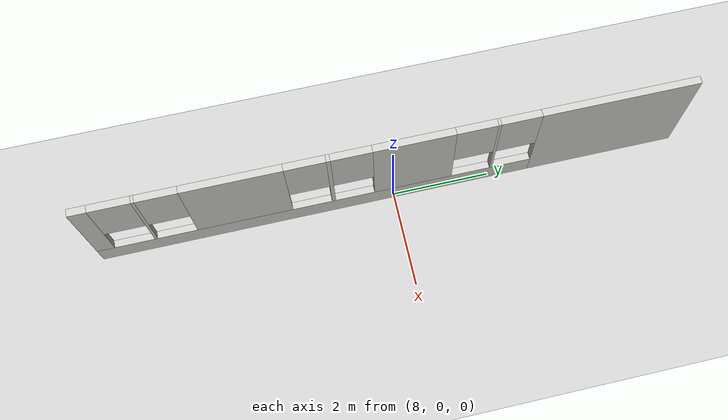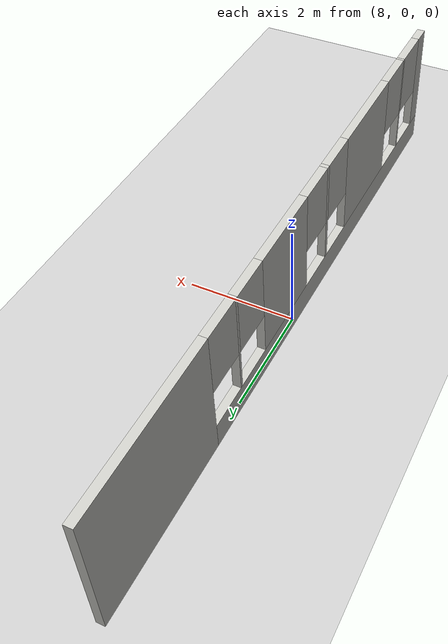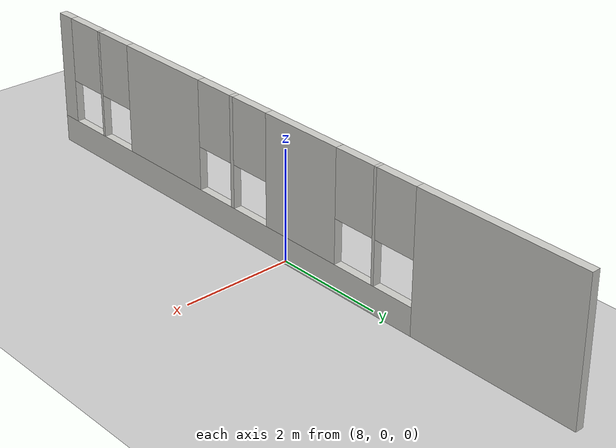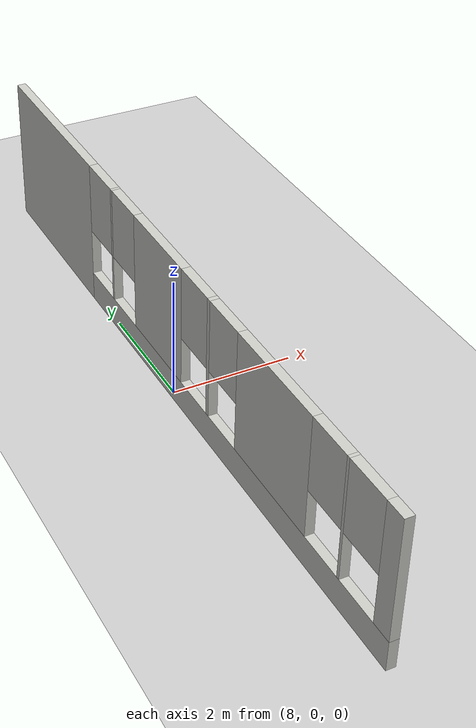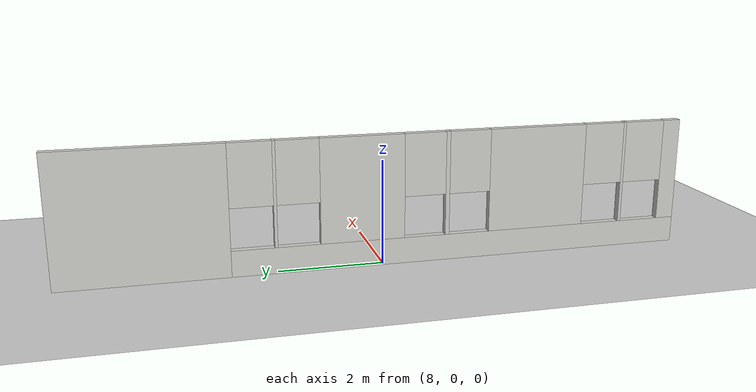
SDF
<sdf version="1.6">
 <world name="default">
  <model name="ground_plane">
   <static>1</static>
   <link name="link">
    <collision name="collision">
     <geometry><plane><normal>0 0 1</normal><size>100 100</size></plane></geometry>
     <surface><friction><ode><mu>100</mu><mu2>50</mu2></ode></friction></surface>
    </collision>
    <visual name="visual">
     <cast_shadows>0</cast_shadows>
     <geometry><plane><normal>0 0 1</normal><size>100 100</size></plane></geometry>
     <material>
      <script><uri>file://media/materials/scripts/gazebo.material</uri><name>Gazebo/Grey</name></script>
     </material>
    </visual>
   </link>
  </model>
  <model name="wall_short_window_tiles">
   <pose>7.99601 -0.02569 0 0 -0 0</pose>
   <link name="Wall_0">
    <pose>0 -0 0 0 -0 -1.5708</pose>
    <visual name="Wall_0_Visual_0">
     <pose>-4.43927 0 1.25 0 -0 0</pose>
     <geometry><box><size>3.12146 0.15 2.5</size></box></geometry>
     <material>
      <script><uri>file://media/materials/scripts/gazebo.material</uri><name>Gazebo/CeilingTiled</name></script>
      <ambient>1 1 1 1</ambient>
     </material>
     <meta><layer>0</layer></meta>
    </visual>
    <collision name="Wall_0_Collision_0">
     <geometry><box><size>3.12146 0.15 2.5</size></box></geometry>
     <pose>-4.43927 0 1.25 0 -0 0</pose>
    </collision>
    <visual name="Wall_0_Visual_1">
     <pose>1.56073 0 0.25 0 -0 0</pose>
     <geometry><box><size>8.87854 0.15 0.5</size></box></geometry>
     <material>
      <script><uri>file://media/materials/scripts/gazebo.material</uri><name>Gazebo/CeilingTiled</name></script>
      <ambient>1 1 1 1</ambient>
     </material>
     <meta><layer>0</layer></meta>
    </visual>
    <collision name="Wall_0_Collision_1">
     <geometry><box><size>8.87854 0.15 0.5</size></box></geometry>
     <pose>1.56073 0 0.25 0 -0 0</pose>
    </collision>
    <visual name="Wall_0_Visual_2">
     <pose>-2.05062 0 1.5 0 -0 0</pose>
     <geometry><box><size>0.055833 0.15 2</size></box></geometry>
     <material>
      <script><uri>file://media/materials/scripts/gazebo.material</uri><name>Gazebo/CeilingTiled</name></script>
      <ambient>1 1 1 1</ambient>
     </material>
     <meta><layer>0</layer></meta>
    </visual>
    <collision name="Wall_0_Collision_2">
     <geometry><box><size>0.055833 0.15 2</size></box></geometry>
     <pose>-2.05062 0 1.5 0 -0 0</pose>
    </collision>
    <visual name="Wall_0_Visual_3">
     <pose>-0.423181 0 1.5 0 -0 0</pose>
     <geometry><box><size>1.59905 0.15 2</size></box></geometry>
     <material>
      <script><uri>file://media/materials/scripts/gazebo.material</uri><name>Gazebo/CeilingTiled</name></script>
      <ambient>1 1 1 1</ambient>
     </material>
     <meta><layer>0</layer></meta>
    </visual>
    <collision name="Wall_0_Collision_3">
     <geometry><box><size>1.59905 0.15 2</size></box></geometry>
     <pose>-0.423181 0 1.5 0 -0 0</pose>
    </collision>
    <visual name="Wall_0_Visual_4">
     <pose>1.21525 0 1.5 0 -0 0</pose>
     <geometry><box><size>0.077807 0.15 2</size></box></geometry>
     <material>
      <script><uri>file://media/materials/scripts/gazebo.material</uri><name>Gazebo/CeilingTiled</name></script>
      <ambient>1 1 1 1</ambient>
     </material>
     <meta><layer>0</layer></meta>
    </visual>
    <collision name="Wall_0_Collision_4">
     <geometry><box><size>0.077807 0.15 2</size></box></geometry>
     <pose>1.21525 0 1.5 0 -0 0</pose>
    </collision>
    <visual name="Wall_0_Visual_5">
     <pose>3.0227 0 1.5 0 -0 0</pose>
     <geometry><box><size>1.9371 0.15 2</size></box></geometry>
     <material>
      <script><uri>file://media/materials/scripts/gazebo.material</uri><name>Gazebo/CeilingTiled</name></script>
      <ambient>1 1 1 1</ambient>
     </material>
     <meta><layer>0</layer></meta>
    </visual>
    <collision name="Wall_0_Collision_5">
     <geometry><box><size>1.9371 0.15 2</size></box></geometry>
     <pose>3.0227 0 1.5 0 -0 0</pose>
    </collision>
    <visual name="Wall_0_Visual_6">
     <pose>4.81917 0 1.5 0 -0 0</pose>
     <geometry><box><size>0.055833 0.15 2</size></box></geometry>
     <material>
      <script><uri>file://media/materials/scripts/gazebo.material</uri><name>Gazebo/CeilingTiled</name></script>
      <ambient>1 1 1 1</ambient>
     </material>
     <meta><layer>0</layer></meta>
    </visual>
    <collision name="Wall_0_Collision_6">
     <geometry><box><size>0.055833 0.15 2</size></box></geometry>
     <pose>4.81917 0 1.5 0 -0 0</pose>
    </collision>
    <visual name="Wall_0_Visual_7">
     <pose>5.82354 0 1.5 0 -0 0</pose>
     <geometry><box><size>0.352917 0.15 2</size></box></geometry>
     <material>
      <script><uri>file://media/materials/scripts/gazebo.material</uri><name>Gazebo/CeilingTiled</name></script>
      <ambient>1 1 1 1</ambient>
     </material>
     <meta><layer>0</layer></meta>
    </visual>
    <collision name="Wall_0_Collision_7">
     <geometry><box><size>0.352917 0.15 2</size></box></geometry>
     <pose>5.82354 0 1.5 0 -0 0</pose>
    </collision>
    <visual name="Wall_0_Visual_8">
     <pose>-2.47854 0 1.9 0 -0 0</pose>
     <geometry><box><size>0.8 0.15 1.2</size></box></geometry>
     <material>
      <script><uri>file://media/materials/scripts/gazebo.material</uri><name>Gazebo/CeilingTiled</name></script>
      <ambient>1 1 1 1</ambient>
     </material>
     <meta><layer>0</layer></meta>
    </visual>
    <collision name="Wall_0_Collision_8">
     <geometry><box><size>0.8 0.15 1.2</size></box></geometry>
     <pose>-2.47854 0 1.9 0 -0 0</pose>
    </collision>
    <visual name="Wall_0_Visual_9">
     <pose>-1.62271 0 1.9 0 -0 0</pose>
     <geometry><box><size>0.8 0.15 1.2</size></box></geometry>
     <material>
      <script><uri>file://media/materials/scripts/gazebo.material</uri><name>Gazebo/CeilingTiled</name></script>
      <ambient>1 1 1 1</ambient>
     </material>
     <meta><layer>0</layer></meta>
    </visual>
    <collision name="Wall_0_Collision_9">
     <geometry><box><size>0.8 0.15 1.2</size></box></geometry>
     <pose>-1.62271 0 1.9 0 -0 0</pose>
    </collision>
    <visual name="Wall_0_Visual_10">
     <pose>0.776344 0 1.9 0 -0 0</pose>
     <geometry><box><size>0.8 0.15 1.2</size></box></geometry>
     <material>
      <script><uri>file://media/materials/scripts/gazebo.material</uri><name>Gazebo/CeilingTiled</name></script>
      <ambient>1 1 1 1</ambient>
     </material>
     <meta><layer>0</layer></meta>
    </visual>
    <collision name="Wall_0_Collision_10">
     <geometry><box><size>0.8 0.15 1.2</size></box></geometry>
     <pose>0.776344 0 1.9 0 -0 0</pose>
    </collision>
    <visual name="Wall_0_Visual_11">
     <pose>1.65415 0 1.9 0 -0 0</pose>
     <geometry><box><size>0.8 0.15 1.2</size></box></geometry>
     <material>
      <script><uri>file://media/materials/scripts/gazebo.material</uri><name>Gazebo/CeilingTiled</name></script>
      <ambient>1 1 1 1</ambient>
     </material>
     <meta><layer>0</layer></meta>
    </visual>
    <collision name="Wall_0_Collision_11">
     <geometry><box><size>0.8 0.15 1.2</size></box></geometry>
     <pose>1.65415 0 1.9 0 -0 0</pose>
    </collision>
    <visual name="Wall_0_Visual_12">
     <pose>4.39125 0 1.9 0 -0 0</pose>
     <geometry><box><size>0.8 0.15 1.2</size></box></geometry>
     <material>
      <script><uri>file://media/materials/scripts/gazebo.material</uri><name>Gazebo/CeilingTiled</name></script>
      <ambient>1 1 1 1</ambient>
     </material>
     <meta><layer>0</layer></meta>
    </visual>
    <collision name="Wall_0_Collision_12">
     <geometry><box><size>0.8 0.15 1.2</size></box></geometry>
     <pose>4.39125 0 1.9 0 -0 0</pose>
    </collision>
    <visual name="Wall_0_Visual_13">
     <pose>5.24708 0 1.9 0 -0 0</pose>
     <geometry><box><size>0.8 0.15 1.2</size></box></geometry>
     <material>
      <script><uri>file://media/materials/scripts/gazebo.material</uri><name>Gazebo/CeilingTiled</name></script>
      <ambient>1 1 1 1</ambient>
     </material>
     <meta><layer>0</layer></meta>
    </visual>
    <collision name="Wall_0_Collision_13">
     <geometry><box><size>0.8 0.15 1.2</size></box></geometry>
     <pose>5.24708 0 1.9 0 -0 0</pose>
    </collision>
   </link>
   <static>1</static>
  </model>
 </world>
</sdf>
